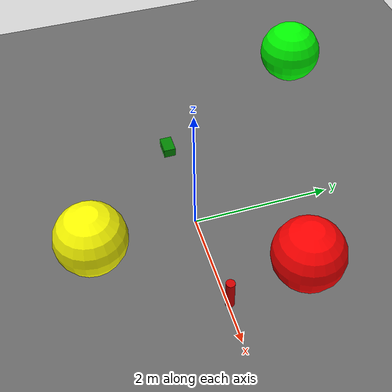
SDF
<sdf version="1.8">
  <world name="default">
    <physics name="1ms" type="ignored">
      <max_step_size>0.001</max_step_size>
      <real_time_factor>1.0</real_time_factor>
    </physics>
    <plugin filename="ignition-gazebo-physics-system" name="ignition::gazebo::systems::Physics"/>
    <plugin filename="ignition-gazebo-user-commands-system" name="ignition::gazebo::systems::UserCommands"/>
    <plugin filename="ignition-gazebo-scene-broadcaster-system" name="ignition::gazebo::systems::SceneBroadcaster"/>
    <plugin filename="ignition-gazebo-sensors-system" name="ignition::gazebo::systems::Sensors">
      <render_engine>ogre2</render_engine>
    </plugin>
    <plugin filename="ignition-gazebo-imu-system" name="ignition::gazebo::systems::Imu"/>

    <light name="sun" type="directional">
      <cast_shadows>true</cast_shadows>
      <pose>0 0 10 0 0 0</pose>
      <diffuse>0.8 0.8 0.8 1</diffuse>
      <specular>0.2 0.2 0.2 1</specular>
      <direction>-0.5 0.1 -0.9</direction>
    </light>
    <gravity>0 0 -9.8</gravity>
    <scene>
      <ambient>0.4 0.4 0.4 1</ambient>
      <background>0.7 0.7 0.7 1</background>
      <shadows>true</shadows>
    </scene>

    <model name="ground_plane">
      <static>true</static>
      <link name="link">
        <collision name="collision">
          <geometry><plane><normal>0 0 1</normal><size>100 100</size></plane></geometry>
        </collision>
        <visual name="visual">
          <geometry><plane><normal>0 0 1</normal><size>100 100</size></plane></geometry>
          <material><ambient>0.4 0.4 0.4 1</ambient><diffuse>0.4 0.4 0.4 1</diffuse></material>
        </visual>
      </link>
    </model>

    <include><uri>model://fire_extinguisher</uri><name>fire_extinguisher</name><pose>1.5 0 0 0 0 0</pose></include>
    <include><uri>model://first_aid_kit</uri><name>first_aid_kit</name><pose>-1.5 0 0 0 0 0</pose></include>

    <model name="yellow_sphere">
      <pose>0.25 -1.5 0.5 0 0 0</pose>
      <link name="link">
        <inertial><mass>1</mass><inertia><ixx>0.1</ixx><iyy>0.1</iyy><izz>0.1</izz></inertia></inertial>
        <collision name="collision"><geometry><sphere><radius>0.5</radius></sphere></geometry></collision>
        <visual name="visual"><geometry><sphere><radius>0.5</radius></sphere></geometry><material><diffuse>1 1 0 1</diffuse></material></visual>
      </link>
    </model>
    <model name="red_sphere">
      <pose>1.33 1.12 0.5 0 0 0</pose>
      <link name="link">
        <inertial><mass>1</mass><inertia><ixx>0.1</ixx><iyy>0.1</iyy><izz>0.1</izz></inertia></inertial>
        <collision name="collision"><geometry><sphere><radius>0.5</radius></sphere></geometry></collision>
        <visual name="visual"><geometry><sphere><radius>0.5</radius></sphere></geometry><material><diffuse>1 0 0 1</diffuse></material></visual>
      </link>
    </model>
    <model name="green_sphere">
      <pose>-2.69 2.5 0.5 0 0 0</pose>
      <link name="link">
        <inertial><mass>1</mass><inertia><ixx>0.1</ixx><iyy>0.1</iyy><izz>0.1</izz></inertia></inertial>
        <collision name="collision"><geometry><sphere><radius>0.5</radius></sphere></geometry></collision>
        <visual name="visual"><geometry><sphere><radius>0.5</radius></sphere></geometry><material><diffuse>0 1 0 1</diffuse></material></visual>
      </link>
    </model>

    <gui fullscreen="false">
      <camera name="user_camera"><pose>6.68 -6.89 6.07 0 0.55 2.11</pose><view_controller>orbit</view_controller></camera>
    </gui>
  </world>
</sdf>

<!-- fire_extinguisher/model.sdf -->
<!-- models/fire_extinguisher/model.sdf -->
<sdf version="1.8">
  <model name="fire_extinguisher"><static>true</static>
    <link name="body"><pose>0 0 0.35 0 0 0</pose>
      <collision name="col">
        <geometry><cylinder><radius>0.06</radius><length>0.45</length></cylinder></geometry>
      </collision>
      <visual name="vis">
        <geometry><cylinder><radius>0.06</radius><length>0.45</length></cylinder></geometry>
        <material><ambient>0.8 0 0 1</ambient><diffuse>0.8 0 0 1</diffuse></material>
      </visual>
    </link>
  </model>
</sdf>

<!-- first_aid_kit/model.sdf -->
<!-- models/first_aid_kit/model.sdf -->
<sdf version="1.8">
  <model name="first_aid_kit"><static>true</static>
    <link name="box"><pose>0 0 0.07 0 0 0</pose>
      <collision name="col"><geometry><box><size>0.28 0.18 0.14</size></box></geometry></collision>
      <visual name="vis">
        <geometry><box><size>0.28 0.18 0.14</size></box></geometry>
        <material><ambient>0 0.5 0 1</ambient><diffuse>0 0.5 0 1</diffuse></material>
      </visual>
    </link>
  </model>
</sdf>
